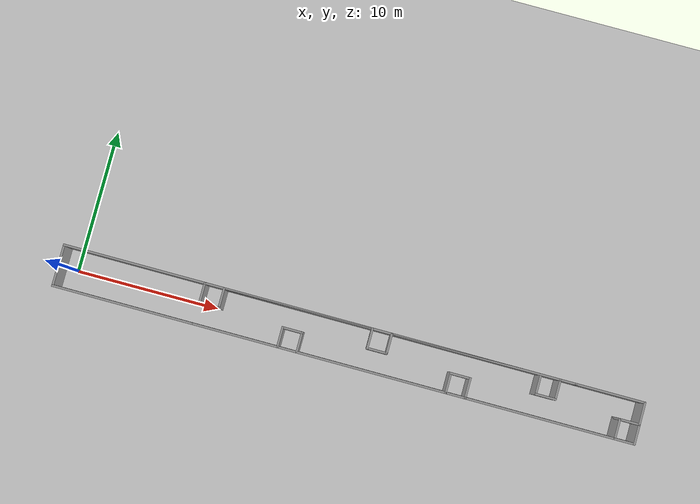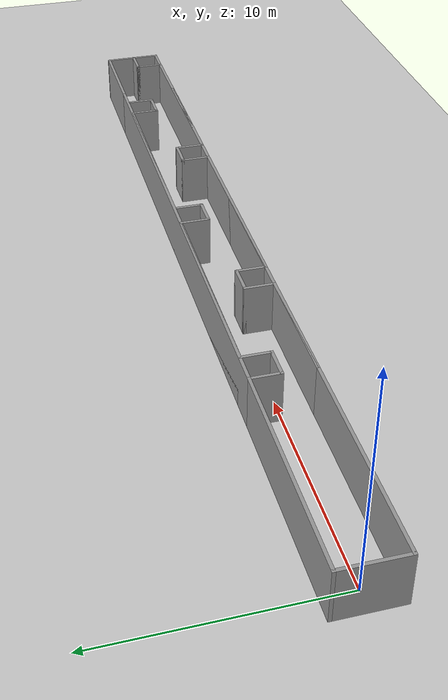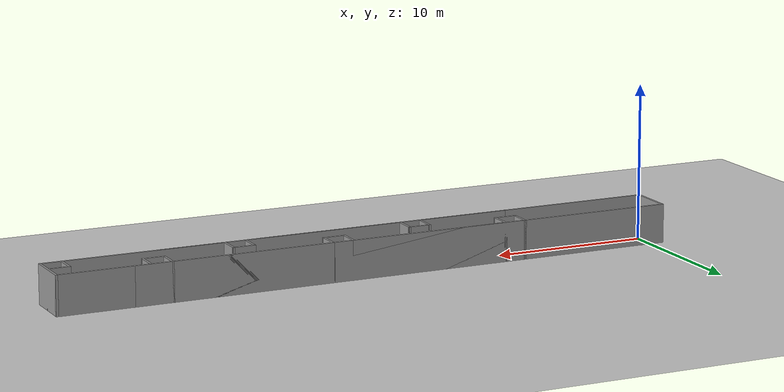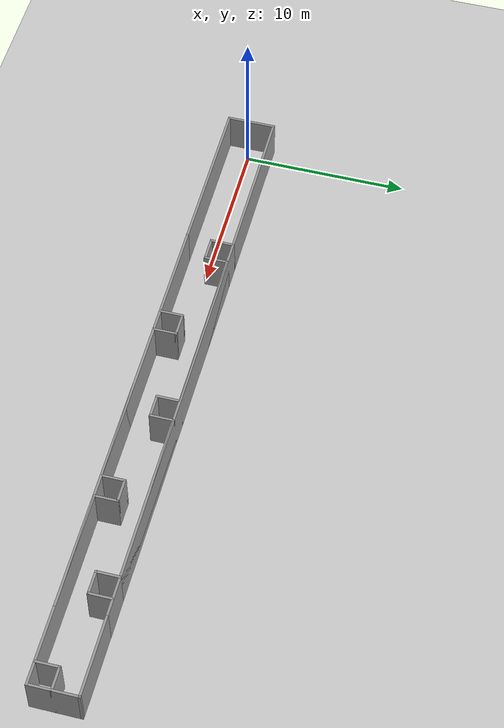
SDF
<sdf version="1.6">
 <world name="default">
  <light name="sun" type="directional">
   <pose>0 0 10 0 -0 0</pose>
   <diffuse>0.8 0.8 0.8 1</diffuse>
   <specular>0.1 0.1 0.1 1</specular>
   <attenuation>
    <range>1000</range>
    <constant>0.9</constant>
    <linear>0.01</linear>
    <quadratic>0.001</quadratic>
   </attenuation>
   <direction>-0.5 0.5 -1</direction>
  </light>
  <model name="ground_plane">
   <static>1</static>
   <link name="link">
    <collision name="collision">
     <geometry><plane><normal>0 0 1</normal><size>100 100</size></plane></geometry>
     <surface><friction><ode><mu>100</mu><mu2>50</mu2></ode></friction></surface>
    </collision>
    <visual name="visual">
     <cast_shadows>0</cast_shadows>
     <geometry><plane><normal>0 0 1</normal><size>100 100</size></plane></geometry>
     <material>
      <script><uri>file://media/materials/scripts/gazebo.material</uri><name>Gazebo/Grey</name></script>
     </material>
    </visual>
   </link>
  </model>
  <gravity>0 0 -9.8</gravity>
  <magnetic_field>6e-06 2.3e-05 -4.2e-05</magnetic_field>
  <atmosphere type="adiabatic"/>
  <physics name="default_physics" default="0" type="ode">
   <max_step_size>0.001</max_step_size>
   <real_time_factor>1</real_time_factor>
   <real_time_update_rate>1000</real_time_update_rate>
  </physics>
  <scene><ambient>0.4 0.4 0.4 1</ambient><background>0.7 0.7 0.7 1</background><shadows>1</shadows></scene>
  <spherical_coordinates>
   <surface_model>EARTH_WGS84</surface_model>
   <latitude_deg>0</latitude_deg>
   <longitude_deg>0</longitude_deg>
   <elevation>0</elevation>
   <heading_deg>0</heading_deg>
  </spherical_coordinates>
  <model name="bbig_s_world">
   <pose>19.3219 -0.000775 0 0 -0 0</pose>
   <link name="Wall_11">
    <collision name="Wall_11_Collision">
     <geometry><box><size>26 0.15 2.5</size></box></geometry>
     <pose>0 0 1.25 0 -0 0</pose>
    </collision>
    <visual name="Wall_11_Visual">
     <pose>0 0 1.25 0 -0 0</pose>
     <geometry><box><size>26 0.15 2.5</size></box></geometry>
     <material>
      <script><uri>file://media/materials/scripts/gazebo.material</uri><name>Gazebo/Grey</name></script>
      <ambient>1 1 1 1</ambient>
     </material>
    </visual>
    <pose>2.55 1.425 0 0 -0 0</pose>
   </link>
   <link name="Wall_13">
    <collision name="Wall_13_Collision">
     <geometry><box><size>26 0.15 2.5</size></box></geometry>
     <pose>0 0 1.25 0 -0 0</pose>
    </collision>
    <visual name="Wall_13_Visual">
     <pose>0 0 1.25 0 -0 0</pose>
     <geometry><box><size>26 0.15 2.5</size></box></geometry>
     <material>
      <script><uri>file://media/materials/scripts/gazebo.material</uri><name>Gazebo/Grey</name></script>
      <ambient>1 1 1 1</ambient>
     </material>
    </visual>
    <pose>2.55 -1.425 0 0 -0 3.14159</pose>
   </link>
   <link name="Wall_15">
    <collision name="Wall_15_Collision">
     <geometry><box><size>1.5 0.15 2.5</size></box></geometry>
     <pose>0 0 1.25 0 -0 0</pose>
    </collision>
    <visual name="Wall_15_Visual">
     <pose>0 0 1.25 0 -0 0</pose>
     <geometry><box><size>1.5 0.15 2.5</size></box></geometry>
     <material>
      <script><uri>file://media/materials/scripts/gazebo.material</uri><name>Gazebo/Grey</name></script>
      <ambient>1 1 1 1</ambient>
     </material>
    </visual>
    <pose>-10.375 0.75 0 0 0 -1.5708</pose>
   </link>
   <link name="Wall_16">
    <collision name="Wall_16_Collision">
     <geometry><box><size>1.5 0.15 2.5</size></box></geometry>
     <pose>0 0 1.25 0 -0 0</pose>
    </collision>
    <visual name="Wall_16_Visual">
     <pose>0 0 1.25 0 -0 0</pose>
     <geometry><box><size>1.5 0.15 2.5</size></box></geometry>
     <material>
      <script><uri>file://media/materials/scripts/gazebo.material</uri><name>Gazebo/Grey</name></script>
      <ambient>1 1 1 1</ambient>
     </material>
    </visual>
    <pose>-9.7 0.075 0 0 -0 0</pose>
   </link>
   <link name="Wall_17">
    <collision name="Wall_17_Collision">
     <geometry><box><size>1.5 0.15 2.5</size></box></geometry>
     <pose>0 0 1.25 0 -0 0</pose>
    </collision>
    <visual name="Wall_17_Visual">
     <pose>0 0 1.25 0 -0 0</pose>
     <geometry><box><size>1.5 0.15 2.5</size></box></geometry>
     <material>
      <script><uri>file://media/materials/scripts/gazebo.material</uri><name>Gazebo/Grey</name></script>
      <ambient>1 1 1 1</ambient>
     </material>
    </visual>
    <pose>-9.025 0.75 0 0 -0 1.5708</pose>
   </link>
   <link name="Wall_19">
    <collision name="Wall_19_Collision">
     <geometry><box><size>10.5 0.15 2.5</size></box></geometry>
     <pose>0 0 1.25 0 -0 0</pose>
    </collision>
    <visual name="Wall_19_Visual">
     <pose>0 0 1.25 0 -0 0</pose>
     <geometry><box><size>10.5 0.15 2.5</size></box></geometry>
     <material>
      <script><uri>file://media/materials/scripts/gazebo.material</uri><name>Gazebo/Grey</name></script>
      <ambient>1 1 1 1</ambient>
     </material>
    </visual>
    <pose>-3.85 1.425 0 0 -0 0</pose>
   </link>
   <link name="Wall_20">
    <collision name="Wall_20_Collision">
     <geometry><box><size>1.5 0.15 2.5</size></box></geometry>
     <pose>0 0 1.25 0 -0 0</pose>
    </collision>
    <visual name="Wall_20_Visual">
     <pose>0 0 1.25 0 -0 0</pose>
     <geometry><box><size>1.5 0.15 2.5</size></box></geometry>
     <material>
      <script><uri>file://media/materials/scripts/gazebo.material</uri><name>Gazebo/Grey</name></script>
      <ambient>1 1 1 1</ambient>
     </material>
    </visual>
    <pose>1.325 0.75 0 0 0 -1.5708</pose>
   </link>
   <link name="Wall_21">
    <collision name="Wall_21_Collision">
     <geometry><box><size>1.5 0.15 2.5</size></box></geometry>
     <pose>0 0 1.25 0 -0 0</pose>
    </collision>
    <visual name="Wall_21_Visual">
     <pose>0 0 1.25 0 -0 0</pose>
     <geometry><box><size>1.5 0.15 2.5</size></box></geometry>
     <material>
      <script><uri>file://media/materials/scripts/gazebo.material</uri><name>Gazebo/Grey</name></script>
      <ambient>1 1 1 1</ambient>
     </material>
    </visual>
    <pose>2 0.075 0 0 -0 0</pose>
   </link>
   <link name="Wall_22">
    <collision name="Wall_22_Collision">
     <geometry><box><size>1.5 0.15 2.5</size></box></geometry>
     <pose>0 0 1.25 0 -0 0</pose>
    </collision>
    <visual name="Wall_22_Visual">
     <pose>0 0 1.25 0 -0 0</pose>
     <geometry><box><size>1.5 0.15 2.5</size></box></geometry>
     <material>
      <script><uri>file://media/materials/scripts/gazebo.material</uri><name>Gazebo/Grey</name></script>
      <ambient>1 1 1 1</ambient>
     </material>
    </visual>
    <pose>2.675 0.75 0 0 -0 1.5708</pose>
   </link>
   <link name="Wall_23">
    <collision name="Wall_23_Collision">
     <geometry><box><size>10.5 0.15 2.5</size></box></geometry>
     <pose>0 0 1.25 0 -0 0</pose>
    </collision>
    <visual name="Wall_23_Visual">
     <pose>0 0 1.25 0 -0 0</pose>
     <geometry><box><size>10.5 0.15 2.5</size></box></geometry>
     <material>
      <script><uri>file://media/materials/scripts/gazebo.material</uri><name>Gazebo/Grey</name></script>
      <ambient>1 1 1 1</ambient>
     </material>
    </visual>
    <pose>7.85 1.425 0 0 -0 0</pose>
   </link>
   <link name="Wall_24">
    <collision name="Wall_24_Collision">
     <geometry><box><size>1.5 0.15 2.5</size></box></geometry>
     <pose>0 0 1.25 0 -0 0</pose>
    </collision>
    <visual name="Wall_24_Visual">
     <pose>0 0 1.25 0 -0 0</pose>
     <geometry><box><size>1.5 0.15 2.5</size></box></geometry>
     <material>
      <script><uri>file://media/materials/scripts/gazebo.material</uri><name>Gazebo/Grey</name></script>
      <ambient>1 1 1 1</ambient>
     </material>
    </visual>
    <pose>13.025 0.75 0 0 0 -1.5708</pose>
   </link>
   <link name="Wall_25">
    <collision name="Wall_25_Collision">
     <geometry><box><size>1.5 0.15 2.5</size></box></geometry>
     <pose>0 0 1.25 0 -0 0</pose>
    </collision>
    <visual name="Wall_25_Visual">
     <pose>0 0 1.25 0 -0 0</pose>
     <geometry><box><size>1.5 0.15 2.5</size></box></geometry>
     <material>
      <script><uri>file://media/materials/scripts/gazebo.material</uri><name>Gazebo/Grey</name></script>
      <ambient>1 1 1 1</ambient>
     </material>
    </visual>
    <pose>13.7 0.075 0 0 -0 0</pose>
   </link>
   <link name="Wall_26">
    <collision name="Wall_26_Collision">
     <geometry><box><size>1.5 0.15 2.5</size></box></geometry>
     <pose>0 0 1.25 0 -0 0</pose>
    </collision>
    <visual name="Wall_26_Visual">
     <pose>0 0 1.25 0 -0 0</pose>
     <geometry><box><size>1.5 0.15 2.5</size></box></geometry>
     <material>
      <script><uri>file://media/materials/scripts/gazebo.material</uri><name>Gazebo/Grey</name></script>
      <ambient>1 1 1 1</ambient>
     </material>
    </visual>
    <pose>14.375 0.75 0 0 -0 1.5708</pose>
   </link>
   <link name="Wall_28">
    <collision name="Wall_28_Collision">
     <geometry><box><size>6 0.15 2.5</size></box></geometry>
     <pose>0 0 1.25 0 -0 0</pose>
    </collision>
    <visual name="Wall_28_Visual">
     <pose>0 0 1.25 0 -0 0</pose>
     <geometry><box><size>6 0.15 2.5</size></box></geometry>
     <material>
      <script><uri>file://media/materials/scripts/gazebo.material</uri><name>Gazebo/Grey</name></script>
      <ambient>1 1 1 1</ambient>
     </material>
    </visual>
    <pose>-7.45 -1.425 0 0 -0 0</pose>
   </link>
   <link name="Wall_29">
    <collision name="Wall_29_Collision">
     <geometry><box><size>1.5 0.15 2.5</size></box></geometry>
     <pose>0 0 1.25 0 -0 0</pose>
    </collision>
    <visual name="Wall_29_Visual">
     <pose>0 0 1.25 0 -0 0</pose>
     <geometry><box><size>1.5 0.15 2.5</size></box></geometry>
     <material>
      <script><uri>file://media/materials/scripts/gazebo.material</uri><name>Gazebo/Grey</name></script>
      <ambient>1 1 1 1</ambient>
     </material>
    </visual>
    <pose>-4.525 -0.75 0 0 -0 1.5708</pose>
   </link>
   <link name="Wall_30">
    <collision name="Wall_30_Collision">
     <geometry><box><size>1.5 0.15 2.5</size></box></geometry>
     <pose>0 0 1.25 0 -0 0</pose>
    </collision>
    <visual name="Wall_30_Visual">
     <pose>0 0 1.25 0 -0 0</pose>
     <geometry><box><size>1.5 0.15 2.5</size></box></geometry>
     <material>
      <script><uri>file://media/materials/scripts/gazebo.material</uri><name>Gazebo/Grey</name></script>
      <ambient>1 1 1 1</ambient>
     </material>
    </visual>
    <pose>-3.85 -0.075 0 0 -0 0</pose>
   </link>
   <link name="Wall_31">
    <collision name="Wall_31_Collision">
     <geometry><box><size>1.5 0.15 2.5</size></box></geometry>
     <pose>0 0 1.25 0 -0 0</pose>
    </collision>
    <visual name="Wall_31_Visual">
     <pose>0 0 1.25 0 -0 0</pose>
     <geometry><box><size>1.5 0.15 2.5</size></box></geometry>
     <material>
      <script><uri>file://media/materials/scripts/gazebo.material</uri><name>Gazebo/Grey</name></script>
      <ambient>1 1 1 1</ambient>
     </material>
    </visual>
    <pose>-3.175 -0.75 0 0 0 -1.5708</pose>
   </link>
   <link name="Wall_32">
    <collision name="Wall_32_Collision">
     <geometry><box><size>10.5 0.15 2.5</size></box></geometry>
     <pose>0 0 1.25 0 -0 0</pose>
    </collision>
    <visual name="Wall_32_Visual">
     <pose>0 0 1.25 0 -0 0</pose>
     <geometry><box><size>10.5 0.15 2.5</size></box></geometry>
     <material>
      <script><uri>file://media/materials/scripts/gazebo.material</uri><name>Gazebo/Grey</name></script>
      <ambient>1 1 1 1</ambient>
     </material>
    </visual>
    <pose>2 -1.425 0 0 -0 0</pose>
   </link>
   <link name="Wall_33">
    <collision name="Wall_33_Collision">
     <geometry><box><size>1.5 0.15 2.5</size></box></geometry>
     <pose>0 0 1.25 0 -0 0</pose>
    </collision>
    <visual name="Wall_33_Visual">
     <pose>0 0 1.25 0 -0 0</pose>
     <geometry><box><size>1.5 0.15 2.5</size></box></geometry>
     <material>
      <script><uri>file://media/materials/scripts/gazebo.material</uri><name>Gazebo/Grey</name></script>
      <ambient>1 1 1 1</ambient>
     </material>
    </visual>
    <pose>7.175 -0.75 0 0 -0 1.5708</pose>
   </link>
   <link name="Wall_34">
    <collision name="Wall_34_Collision">
     <geometry><box><size>1.5 0.15 2.5</size></box></geometry>
     <pose>0 0 1.25 0 -0 0</pose>
    </collision>
    <visual name="Wall_34_Visual">
     <pose>0 0 1.25 0 -0 0</pose>
     <geometry><box><size>1.5 0.15 2.5</size></box></geometry>
     <material>
      <script><uri>file://media/materials/scripts/gazebo.material</uri><name>Gazebo/Grey</name></script>
      <ambient>1 1 1 1</ambient>
     </material>
    </visual>
    <pose>7.85 -0.075 0 0 -0 0</pose>
   </link>
   <link name="Wall_35">
    <collision name="Wall_35_Collision">
     <geometry><box><size>1.5 0.15 2.5</size></box></geometry>
     <pose>0 0 1.25 0 -0 0</pose>
    </collision>
    <visual name="Wall_35_Visual">
     <pose>0 0 1.25 0 -0 0</pose>
     <geometry><box><size>1.5 0.15 2.5</size></box></geometry>
     <material>
      <script><uri>file://media/materials/scripts/gazebo.material</uri><name>Gazebo/Grey</name></script>
      <ambient>1 1 1 1</ambient>
     </material>
    </visual>
    <pose>8.525 -0.75 0 0 0 -1.5708</pose>
   </link>
   <link name="Wall_36">
    <collision name="Wall_36_Collision">
     <geometry><box><size>10.5 0.15 2.5</size></box></geometry>
     <pose>0 0 1.25 0 -0 0</pose>
    </collision>
    <visual name="Wall_36_Visual">
     <pose>0 0 1.25 0 -0 0</pose>
     <geometry><box><size>10.5 0.15 2.5</size></box></geometry>
     <material>
      <script><uri>file://media/materials/scripts/gazebo.material</uri><name>Gazebo/Grey</name></script>
      <ambient>1 1 1 1</ambient>
     </material>
    </visual>
    <pose>13.7 -1.425 0 0 -0 0</pose>
   </link>
   <link name="Wall_37">
    <collision name="Wall_37_Collision">
     <geometry><box><size>1.5 0.15 2.5</size></box></geometry>
     <pose>0 0 1.25 0 -0 0</pose>
    </collision>
    <visual name="Wall_37_Visual">
     <pose>0 0 1.25 0 -0 0</pose>
     <geometry><box><size>1.5 0.15 2.5</size></box></geometry>
     <material>
      <script><uri>file://media/materials/scripts/gazebo.material</uri><name>Gazebo/Grey</name></script>
      <ambient>1 1 1 1</ambient>
     </material>
    </visual>
    <pose>18.875 -0.75 0 0 -0 1.5708</pose>
   </link>
   <link name="Wall_38">
    <collision name="Wall_38_Collision">
     <geometry><box><size>1.5 0.15 2.5</size></box></geometry>
     <pose>0 0 1.25 0 -0 0</pose>
    </collision>
    <visual name="Wall_38_Visual">
     <pose>0 0 1.25 0 -0 0</pose>
     <geometry><box><size>1.5 0.15 2.5</size></box></geometry>
     <material>
      <script><uri>file://media/materials/scripts/gazebo.material</uri><name>Gazebo/Grey</name></script>
      <ambient>1 1 1 1</ambient>
     </material>
    </visual>
    <pose>19.55 -0.075 0 0 -0 0</pose>
   </link>
   <link name="Wall_40">
    <collision name="Wall_40_Collision">
     <geometry><box><size>1.5 0.15 2.5</size></box></geometry>
     <pose>0 0 1.25 0 -0 0</pose>
    </collision>
    <visual name="Wall_40_Visual">
     <pose>0 0 1.25 0 -0 0</pose>
     <geometry><box><size>1.5 0.15 2.5</size></box></geometry>
     <material>
      <script><uri>file://media/materials/scripts/gazebo.material</uri><name>Gazebo/Grey</name></script>
      <ambient>1 1 1 1</ambient>
     </material>
    </visual>
    <pose>19.55 -1.425 0 0 -0 3.14159</pose>
   </link>
   <link name="Wall_43">
    <collision name="Wall_43_Collision">
     <geometry><box><size>3 0.15 2.5</size></box></geometry>
     <pose>0 0 1.25 0 -0 0</pose>
    </collision>
    <visual name="Wall_43_Visual">
     <pose>0 0 1.25 0 -0 0</pose>
     <geometry><box><size>3 0.15 2.5</size></box></geometry>
     <material>
      <script><uri>file://media/materials/scripts/gazebo.material</uri><name>Gazebo/Grey</name></script>
      <ambient>1 1 1 1</ambient>
     </material>
    </visual>
    <pose>20.225 0 0 0 -0 1.5708</pose>
   </link>
   <link name="Wall_44">
    <collision name="Wall_44_Collision">
     <geometry><box><size>4.9 0.15 2.5</size></box></geometry>
     <pose>0 0 1.25 0 -0 0</pose>
    </collision>
    <visual name="Wall_44_Visual">
     <pose>0 0 1.25 0 -0 0</pose>
     <geometry><box><size>4.9 0.15 2.5</size></box></geometry>
     <material>
      <script><uri>file://media/materials/scripts/gazebo.material</uri><name>Gazebo/Grey</name></script>
      <ambient>1 1 1 1</ambient>
     </material>
    </visual>
    <pose>17.85 1.425 0 0 -0 3.14159</pose>
   </link>
   <link name="Wall_6">
    <collision name="Wall_6_Collision">
     <geometry><box><size>3 0.15 2.5</size></box></geometry>
     <pose>0 0 1.25 0 -0 0</pose>
    </collision>
    <visual name="Wall_6_Visual">
     <pose>0 0 1.25 0 -0 0</pose>
     <geometry><box><size>3 0.15 2.5</size></box></geometry>
     <material>
      <script><uri>file://media/materials/scripts/gazebo.material</uri><name>Gazebo/Grey</name></script>
      <ambient>1 1 1 1</ambient>
     </material>
    </visual>
    <pose>-20.225 0 0 0 0 -1.5708</pose>
   </link>
   <link name="Wall_7">
    <collision name="Wall_7_Collision">
     <geometry><box><size>10 0.15 2.5</size></box></geometry>
     <pose>0 0 1.25 0 -0 0</pose>
    </collision>
    <visual name="Wall_7_Visual">
     <pose>0 0 1.25 0 -0 0</pose>
     <geometry><box><size>10 0.15 2.5</size></box></geometry>
     <material>
      <script><uri>file://media/materials/scripts/gazebo.material</uri><name>Gazebo/Grey</name></script>
      <ambient>1 1 1 1</ambient>
     </material>
    </visual>
    <pose>-15.3 -1.425 0 0 -0 0</pose>
   </link>
   <link name="Wall_9">
    <collision name="Wall_9_Collision">
     <geometry><box><size>10 0.15 2.5</size></box></geometry>
     <pose>0 0 1.25 0 -0 0</pose>
    </collision>
    <visual name="Wall_9_Visual">
     <pose>0 0 1.25 0 -0 0</pose>
     <geometry><box><size>10 0.15 2.5</size></box></geometry>
     <material>
      <script><uri>file://media/materials/scripts/gazebo.material</uri><name>Gazebo/Grey</name></script>
      <ambient>1 1 1 1</ambient>
     </material>
    </visual>
    <pose>-15.3 1.425 0 0 -0 3.14159</pose>
   </link>
   <static>1</static>
  </model>
 </world>
</sdf>
